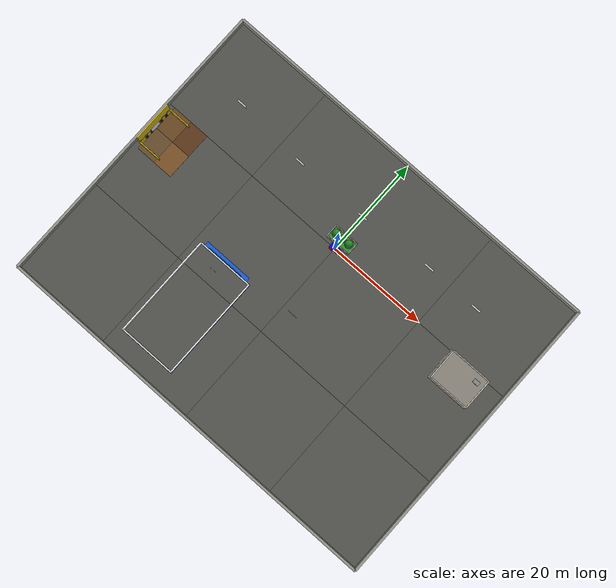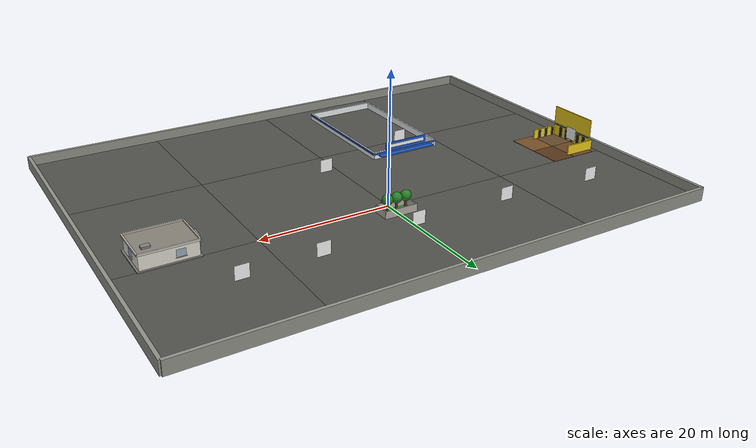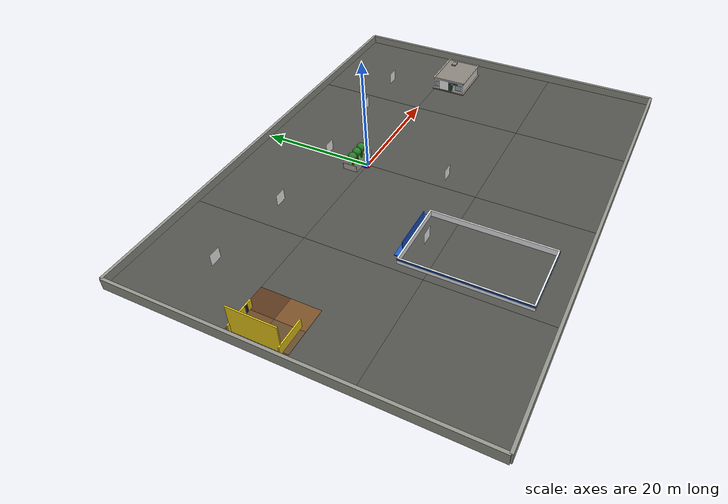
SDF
<sdf version="1.9">
 <world name="default">
  <light name="sun" type="directional">
   <pose>0 0 10 0 0 0</pose>
   <diffuse>0.8 0.8 0.8 1</diffuse>
   <specular>0.2 0.2 0.2 1</specular>
   <attenuation>
    <range>1000</range>
    <constant>0.9</constant>
    <linear>0.01</linear>
    <quadratic>0.001</quadratic>
   </attenuation>
   <direction>-0.5 0.1 -0.9</direction>
  </light>
  <physics type="ode">
   <ode>
    <solver><type>quick</type><iters>1000</iters><sor>1.3</sor></solver>
    <constraints>
     <cfm>0</cfm>
     <erp>0.2</erp>
     <contact_max_correcting_vel>100</contact_max_correcting_vel>
     <contact_surface_layer>0.001</contact_surface_layer>
    </constraints>
   </ode>
   <max_step_size>0.01</max_step_size>
   <real_time_factor>1</real_time_factor>
   <real_time_update_rate>100</real_time_update_rate>
   <gravity>0 0 -9.8</gravity>
  </physics>
  <scene><ambient>0.4 0.4 0.4 1</ambient><background>0.7 0.7 0.7 1</background><shadows>1</shadows></scene>
  <spherical_coordinates>
   <surface_model>EARTH_WGS84</surface_model>
   <latitude_deg>47.3667</latitude_deg>
   <longitude_deg>8.5500</longitude_deg>
   <elevation>500.0</elevation>
   <heading_deg>0</heading_deg>
  </spherical_coordinates>
  <model name="vehicle_blue" canonical_link="chassis">
   <pose relative_to="world">0.0 0.0 0 0 0 0</pose>
   <frame name="lidar_frame" attached_to="chassis"><pose>0.85 0 0.55 0 0 0</pose></frame>
   <link name="chassis">
    <pose relative_to="__model__">0.0 0.0 0.4 0 0 0</pose>
    <inertial>
     <mass>1.14395</mass>
     <inertia>
      <ixx>0.095329</ixx>
      <ixy>0</ixy>
      <ixz>0</ixz>
      <iyy>0.381317</iyy>
      <iyz>0</iyz>
      <izz>0.476646</izz>
     </inertia>
    </inertial>
    <visual name="visual">
     <geometry><box><size>2.0 1.0 0.5</size></box></geometry>
     <material>
      <ambient>0.0 0.0 1.0 1</ambient>
      <diffuse>0.0 0.0 1.0 1</diffuse>
      <specular>0.0 0.0 1.0 1</specular>
     </material>
    </visual>
    <collision name="collision"><geometry><box><size>2.0 1.0 0.5</size></box></geometry></collision>
    <sensor name="gpu_lidar" type="gpu_lidar">
     <pose relative_to="lidar_frame">0 0 0 0 0 0</pose>
     <topic>scan</topic>
     <update_rate>10</update_rate>
     <ray>
      <scan>
       <horizontal>
        <samples>360</samples>
        <resolution>1</resolution>
        <min_angle>-3.14159</min_angle>
        <max_angle>3.14159</max_angle>
       </horizontal>
       <vertical>
        <samples>1</samples>
        <resolution>0.01</resolution>
        <min_angle>0</min_angle>
        <max_angle>0</max_angle>
       </vertical>
      </scan>
      <range><min>0.08</min><max>30.0</max><resolution>0.01</resolution></range>
     </ray>
     <always_on>1</always_on>
     <visualize>true</visualize>
    </sensor>
    <sensor name="front_cam" type="camera">
     <pose>0.9  0  0.0  0  -0.10  0</pose>
     <update_rate>30</update_rate>
     <camera>
      <horizontal_fov>1.05</horizontal_fov>
      <image><width>1280</width><height>720</height><format>R8G8B8</format></image>
     </camera>
     <always_on>true</always_on>
    </sensor>
    <sensor name="imu_sensor" type="imu">
     <always_on>1</always_on>
     <update_rate>50</update_rate>
     <visualize>true</visualize>
     <topic>imu</topic>
    </sensor>
   </link>
   <link name="left_wheel">
    <pose relative_to="chassis">-0.5 0.6 0 -1.5707 0 0</pose>
    <inertial>
     <mass>1</mass>
     <inertia><ixx>0.043333</ixx><ixy>0</ixy><ixz>0</ixz><iyy>0.043333</iyy><iyz>0</iyz><izz>0.08</izz></inertia>
    </inertial>
    <visual name="visual">
     <geometry><cylinder><radius>0.4</radius><length>0.2</length></cylinder></geometry>
     <material>
      <ambient>1.0 0.0 0.0 1</ambient>
      <diffuse>1.0 0.0 0.0 1</diffuse>
      <specular>1.0 0.0 0.0 1</specular>
     </material>
    </visual>
    <collision name="collision">
     <geometry><cylinder><radius>0.4</radius><length>0.2</length></cylinder></geometry>
    </collision>
   </link>
   <link name="right_wheel">
    <pose relative_to="chassis">-0.5 -0.6 0 -1.5707 0 0</pose>
    <inertial>
     <mass>1</mass>
     <inertia><ixx>0.043333</ixx><ixy>0</ixy><ixz>0</ixz><iyy>0.043333</iyy><iyz>0</iyz><izz>0.08</izz></inertia>
    </inertial>
    <visual name="visual">
     <geometry><cylinder><radius>0.4</radius><length>0.2</length></cylinder></geometry>
     <material>
      <ambient>1.0 0.0 0.0 1</ambient>
      <diffuse>1.0 0.0 0.0 1</diffuse>
      <specular>1.0 0.0 0.0 1</specular>
     </material>
    </visual>
    <collision name="collision">
     <geometry><cylinder><radius>0.4</radius><length>0.2</length></cylinder></geometry>
    </collision>
   </link>
   <frame name="caster_frame" attached_to="chassis"><pose>0.8 0 -0.2 0 0 0</pose></frame>
   <link name="caster">
    <pose relative_to="caster_frame"/>
    <inertial>
     <mass>1</mass>
     <inertia><ixx>0.016</ixx><ixy>0</ixy><ixz>0</ixz><iyy>0.016</iyy><iyz>0</iyz><izz>0.016</izz></inertia>
    </inertial>
    <visual name="visual">
     <geometry><sphere><radius>0.2</radius></sphere></geometry>
     <material>
      <ambient>0.0 1 0.0 1</ambient>
      <diffuse>0.0 1 0.0 1</diffuse>
      <specular>0.0 1 0.0 1</specular>
     </material>
    </visual>
    <collision name="collision"><geometry><sphere><radius>0.2</radius></sphere></geometry></collision>
   </link>
   <joint name="left_wheel_joint" type="revolute">
    <pose relative_to="left_wheel"/>
    <parent>chassis</parent>
    <child>left_wheel</child>
    <axis>
     <xyz expressed_in="__model__">0 1 0</xyz>
     <limit><lower>-1.79769e+308</lower><upper>1.79769e+308</upper></limit>
    </axis>
   </joint>
   <joint name="right_wheel_joint" type="revolute">
    <pose relative_to="right_wheel"/>
    <parent>chassis</parent>
    <child>right_wheel</child>
    <axis>
     <xyz expressed_in="__model__">0 1 0</xyz>
     <limit><lower>-1.79769e+308</lower><upper>1.79769e+308</upper></limit>
    </axis>
   </joint>
   <joint name="caster_wheel" type="ball"><parent>chassis</parent><child>caster</child></joint>
   <plugin filename="gz-sim-diff-drive-system" name="gz::sim::systems::DiffDrive">
    <left_joint>left_wheel_joint</left_joint>
    <right_joint>right_wheel_joint</right_joint>
    <wheel_separation>1.2</wheel_separation>
    <wheel_radius>0.4</wheel_radius>
    <odom_publish_frequency>30.0</odom_publish_frequency>
    <topic>cmd_vel</topic>
    <max_linear_velocity>3.0</max_linear_velocity>
    <max_angular_velocity>3.0</max_angular_velocity>
    <max_linear_acceleration>5.0</max_linear_acceleration>
    <max_angular_acceleration>5.0</max_angular_acceleration>
   </plugin>
   <plugin name="gz::sim::systems::JointStatePublisher" filename="gz-sim-joint-state-publisher-system">
    <publish_rate>50</publish_rate>
   </plugin>
   <plugin filename="ignition-gazebo-sensors-system" name="ignition::gazebo::systems::Sensors">
    <render_engine>ogre2</render_engine>
   </plugin>
  </model>
  <include><name>qr1_docking_station</name><uri>model://qr1</uri><pose>-38.85 -5 1.5 0 1.5708 0</pose></include>
  <include><name>qr2_house_5</name><uri>model://qr2</uri><pose>-30 8.5 1.5 1.5708 0 0</pose></include>
  <include><name>qr3_house_4</name><uri>model://qr3</uri><pose>-15 7.5 1.5 1.5708 0 0</pose></include>
  <include><name>qr4_house_1</name><uri>model://qr4</uri><pose>0 7.5 1.5 1.5708 0 0</pose></include>
  <include><name>qr5_house_2</name><uri>model://qr5</uri><pose>15 8.5 1.5 1.5708 0 0</pose></include>
  <include><name>qr6_house_3</name><uri>model://qr6</uri><pose>26.0633 8.5 1.5 1.5708 0 0</pose></include>
  <include><name>qr7_fast_food</name><uri>model://qr7</uri><pose>2.2 -14 1.5 -1.5708 0 0</pose></include>
  <include><name>qr8_gas_station</name><uri>model://qr8</uri><pose>-13.3 -17.5 2.0 -1.5708 0 0</pose></include>
  <include>
   <name>qr10_community_clinic</name>
   <uri>model://qr10</uri>
   <pose>27.5 -2.2 1.5 0 -1.5708 0</pose>
  </include>
  <model name="asphalt_plane">
   <static>1</static>
   <link name="link">
    <collision name="collision"><geometry><box><size>20 20 0.1</size></box></geometry></collision>
    <visual name="visual">
     <cast_shadows>0</cast_shadows>
     <geometry><box><size>20 20 0.1</size></box></geometry>
     <material>
      <ambient>0.18 0.18 0.17 1</ambient>
      <diffuse>0.32 0.32 0.30 1</diffuse>
      <specular>0.05 0.05 0.05 1</specular>
      <emissive>0 0 0 1</emissive>
     </material>
    </visual>
    <velocity_decay><linear>0</linear><angular>0</angular></velocity_decay>
   </link>
   <pose>10 10 0 0 0 0</pose>
  </model>
  <model name="asphalt_plane_0">
   <static>1</static>
   <link name="link">
    <collision name="collision"><geometry><box><size>20 20 0.1</size></box></geometry></collision>
    <visual name="visual">
     <cast_shadows>0</cast_shadows>
     <geometry><box><size>20 20 0.1</size></box></geometry>
     <material>
      <ambient>0.18 0.18 0.17 1</ambient>
      <diffuse>0.32 0.32 0.30 1</diffuse>
      <specular>0.05 0.05 0.05 1</specular>
      <emissive>0 0 0 1</emissive>
     </material>
    </visual>
    <velocity_decay><linear>0</linear><angular>0</angular></velocity_decay>
   </link>
   <pose>10 -10 0 0 0 0</pose>
  </model>
  <model name="asphalt_plane_1">
   <static>1</static>
   <link name="link">
    <collision name="collision"><geometry><box><size>20 20 0.1</size></box></geometry></collision>
    <visual name="visual">
     <cast_shadows>0</cast_shadows>
     <geometry><box><size>20 20 0.1</size></box></geometry>
     <material>
      <ambient>0.18 0.18 0.17 1</ambient>
      <diffuse>0.32 0.32 0.30 1</diffuse>
      <specular>0.05 0.05 0.05 1</specular>
      <emissive>0 0 0 1</emissive>
     </material>
    </visual>
    <velocity_decay><linear>0</linear><angular>0</angular></velocity_decay>
   </link>
   <pose>-10 10 0 0 0 0</pose>
  </model>
  <model name="asphalt_plane_2">
   <static>1</static>
   <link name="link">
    <collision name="collision"><geometry><box><size>20 20 0.1</size></box></geometry></collision>
    <visual name="visual">
     <cast_shadows>0</cast_shadows>
     <geometry><box><size>20 20 0.1</size></box></geometry>
     <material>
      <ambient>0.18 0.18 0.17 1</ambient>
      <diffuse>0.32 0.32 0.30 1</diffuse>
      <specular>0.05 0.05 0.05 1</specular>
      <emissive>0 0 0 1</emissive>
     </material>
    </visual>
    <velocity_decay><linear>0</linear><angular>0</angular></velocity_decay>
   </link>
   <pose>-10 -10 0 0 0 0</pose>
  </model>
  <model name="asphalt_plane_3">
   <static>1</static>
   <link name="link">
    <collision name="collision"><geometry><box><size>20 20 0.1</size></box></geometry></collision>
    <visual name="visual">
     <cast_shadows>0</cast_shadows>
     <geometry><box><size>20 20 0.1</size></box></geometry>
     <material>
      <ambient>0.18 0.18 0.17 1</ambient>
      <diffuse>0.32 0.32 0.30 1</diffuse>
      <specular>0.05 0.05 0.05 1</specular>
      <emissive>0 0 0 1</emissive>
     </material>
    </visual>
    <velocity_decay><linear>0</linear><angular>0</angular></velocity_decay>
   </link>
   <pose>-10 -30 0 0 0 0</pose>
  </model>
  <model name="asphalt_plane_4">
   <static>1</static>
   <link name="link">
    <collision name="collision"><geometry><box><size>20 20 0.1</size></box></geometry></collision>
    <visual name="visual">
     <cast_shadows>0</cast_shadows>
     <geometry><box><size>20 20 0.1</size></box></geometry>
     <material>
      <ambient>0.18 0.18 0.17 1</ambient>
      <diffuse>0.32 0.32 0.30 1</diffuse>
      <specular>0.05 0.05 0.05 1</specular>
      <emissive>0 0 0 1</emissive>
     </material>
    </visual>
    <velocity_decay><linear>0</linear><angular>0</angular></velocity_decay>
   </link>
   <pose>10 -30 0 0 0 0</pose>
  </model>
  <model name="asphalt_plane_5">
   <static>1</static>
   <link name="link">
    <collision name="collision"><geometry><box><size>20 20 0.1</size></box></geometry></collision>
    <visual name="visual">
     <cast_shadows>0</cast_shadows>
     <geometry><box><size>20 20 0.1</size></box></geometry>
     <material>
      <ambient>0.18 0.18 0.17 1</ambient>
      <diffuse>0.32 0.32 0.30 1</diffuse>
      <specular>0.05 0.05 0.05 1</specular>
      <emissive>0 0 0 1</emissive>
     </material>
    </visual>
    <velocity_decay><linear>0</linear><angular>0</angular></velocity_decay>
   </link>
   <pose>30 -30 0 0 0 0</pose>
  </model>
  <model name="asphalt_plane_6">
   <static>1</static>
   <link name="link">
    <collision name="collision"><geometry><box><size>20 20 0.1</size></box></geometry></collision>
    <visual name="visual">
     <cast_shadows>0</cast_shadows>
     <geometry><box><size>20 20 0.1</size></box></geometry>
     <material>
      <ambient>0.18 0.18 0.17 1</ambient>
      <diffuse>0.32 0.32 0.30 1</diffuse>
      <specular>0.05 0.05 0.05 1</specular>
      <emissive>0 0 0 1</emissive>
     </material>
    </visual>
    <velocity_decay><linear>0</linear><angular>0</angular></velocity_decay>
   </link>
   <pose>30 10 0 0 0 0</pose>
  </model>
  <model name="asphalt_plane_7">
   <static>1</static>
   <link name="link">
    <collision name="collision"><geometry><box><size>20 20 0.1</size></box></geometry></collision>
    <visual name="visual">
     <cast_shadows>0</cast_shadows>
     <geometry><box><size>20 20 0.1</size></box></geometry>
     <material>
      <ambient>0.18 0.18 0.17 1</ambient>
      <diffuse>0.32 0.32 0.30 1</diffuse>
      <specular>0.05 0.05 0.05 1</specular>
      <emissive>0 0 0 1</emissive>
     </material>
    </visual>
    <velocity_decay><linear>0</linear><angular>0</angular></velocity_decay>
   </link>
   <pose>30 -10 0 0 0 0</pose>
  </model>
  <model name="asphalt_plane_8">
   <static>1</static>
   <link name="link">
    <collision name="collision"><geometry><box><size>20 20 0.1</size></box></geometry></collision>
    <visual name="visual">
     <cast_shadows>0</cast_shadows>
     <geometry><box><size>20 20 0.1</size></box></geometry>
     <material>
      <ambient>0.18 0.18 0.17 1</ambient>
      <diffuse>0.32 0.32 0.30 1</diffuse>
      <specular>0.05 0.05 0.05 1</specular>
      <emissive>0 0 0 1</emissive>
     </material>
    </visual>
    <velocity_decay><linear>0</linear><angular>0</angular></velocity_decay>
   </link>
   <pose>-30 10 0 0 0 0</pose>
  </model>
  <model name="asphalt_plane_9">
   <static>1</static>
   <link name="link">
    <collision name="collision"><geometry><box><size>20 20 0.1</size></box></geometry></collision>
    <visual name="visual">
     <cast_shadows>0</cast_shadows>
     <geometry><box><size>20 20 0.1</size></box></geometry>
     <material>
      <ambient>0.18 0.18 0.17 1</ambient>
      <diffuse>0.32 0.32 0.30 1</diffuse>
      <specular>0.05 0.05 0.05 1</specular>
      <emissive>0 0 0 1</emissive>
     </material>
    </visual>
    <velocity_decay><linear>0</linear><angular>0</angular></velocity_decay>
   </link>
   <pose>-30 -10 0 0 0 0</pose>
  </model>
  <model name="asphalt_plane_10">
   <static>1</static>
   <link name="link">
    <collision name="collision"><geometry><box><size>20 20 0.1</size></box></geometry></collision>
    <visual name="visual">
     <cast_shadows>0</cast_shadows>
     <geometry><box><size>20 20 0.1</size></box></geometry>
     <material>
      <ambient>0.18 0.18 0.17 1</ambient>
      <diffuse>0.32 0.32 0.30 1</diffuse>
      <specular>0.05 0.05 0.05 1</specular>
      <emissive>0 0 0 1</emissive>
     </material>
    </visual>
    <velocity_decay><linear>0</linear><angular>0</angular></velocity_decay>
   </link>
   <pose>-30 -30 0 0 0 0</pose>
  </model>
  <model name="Docking Station Wall">
   <static>1</static>
   <link name="link">
    <collision name="collision">
     <pose>-39 -5 2.55 0 0 0</pose>
     <geometry><box><size>0.2 8 5.0</size></box></geometry>
    </collision>
    <collision name="left_side_wall_collision">
     <pose>-37 -1 0.85 0 0 0</pose>
     <geometry><box><size>5.0 0.2 1.6</size></box></geometry>
    </collision>
    <collision name="right_side_wall_collision">
     <pose>-37 -9 0.85 0 0 0</pose>
     <geometry><box><size>5.0 0.2 1.6</size></box></geometry>
    </collision>
    <visual name="visual">
     <pose>-39 -5 2.55 0 0 0</pose>
     <geometry><box><size>0.2 8 5.0</size></box></geometry>
     <material>
      <ambient>0.55 0.48 0.05 1</ambient>
      <diffuse>0.95 0.82 0.10 1</diffuse>
      <specular>0.30 0.26 0.06 1</specular>
      <emissive>0.20 0.16 0.02 1</emissive>
     </material>
    </visual>
    <visual name="left_side_wall_visual">
     <pose>-37 -1 0.85 0 0 0</pose>
     <geometry><box><size>5.0 0.2 1.6</size></box></geometry>
     <material>
      <ambient>0.55 0.48 0.05 1</ambient>
      <diffuse>0.95 0.82 0.10 1</diffuse>
      <specular>0.30 0.26 0.06 1</specular>
      <emissive>0.20 0.16 0.02 1</emissive>
     </material>
    </visual>
    <visual name="right_side_wall_visual">
     <pose>-37 -9 0.85 0 0 0</pose>
     <geometry><box><size>5.0 0.2 1.6</size></box></geometry>
     <material>
      <ambient>0.55 0.48 0.05 1</ambient>
      <diffuse>0.95 0.82 0.10 1</diffuse>
      <specular>0.30 0.26 0.06 1</specular>
      <emissive>0.20 0.16 0.02 1</emissive>
     </material>
    </visual>
    <visual name="docking_stripe_inner_1">
     <pose>-38.89 -7.4 1.0 0 0 0</pose>
     <geometry><box><size>0.04 0.65 1.9</size></box></geometry>
     <material>
      <ambient>0.05 0.05 0.05 1</ambient>
      <diffuse>0.10 0.10 0.10 1</diffuse>
      <specular>0.05 0.05 0.05 1</specular>
     </material>
    </visual>
    <visual name="docking_stripe_inner_2">
     <pose>-38.89 -6.1 1.0 0 0 0</pose>
     <geometry><box><size>0.04 0.65 1.9</size></box></geometry>
     <material>
      <ambient>0.05 0.05 0.05 1</ambient>
      <diffuse>0.10 0.10 0.10 1</diffuse>
      <specular>0.05 0.05 0.05 1</specular>
     </material>
    </visual>
    <visual name="docking_stripe_inner_3">
     <pose>-38.89 -4.8 1.0 0 0 0</pose>
     <geometry><box><size>0.04 0.65 1.9</size></box></geometry>
     <material>
      <ambient>0.05 0.05 0.05 1</ambient>
      <diffuse>0.10 0.10 0.10 1</diffuse>
      <specular>0.05 0.05 0.05 1</specular>
     </material>
    </visual>
    <visual name="docking_stripe_inner_4">
     <pose>-38.89 -3.5 1.0 0 0 0</pose>
     <geometry><box><size>0.04 0.65 1.9</size></box></geometry>
     <material>
      <ambient>0.05 0.05 0.05 1</ambient>
      <diffuse>0.10 0.10 0.10 1</diffuse>
      <specular>0.05 0.05 0.05 1</specular>
     </material>
    </visual>
    <visual name="docking_stripe_inner_5">
     <pose>-38.89 -2.2 1.0 0 0 0</pose>
     <geometry><box><size>0.04 0.65 1.9</size></box></geometry>
     <material>
      <ambient>0.05 0.05 0.05 1</ambient>
      <diffuse>0.10 0.10 0.10 1</diffuse>
      <specular>0.05 0.05 0.05 1</specular>
     </material>
    </visual>
    <visual name="docking_kickplate_top">
     <pose>-38.89 -5 2.10 0 0 0</pose>
     <geometry><box><size>0.04 7.9 0.25</size></box></geometry>
     <material>
      <ambient>0.05 0.05 0.05 1</ambient>
      <diffuse>0.12 0.12 0.12 1</diffuse>
      <specular>0.05 0.05 0.05 1</specular>
     </material>
    </visual>
    <visual name="docking_stripe_left_1">
     <pose>-38.4 -1.11 0.85 0 0 0</pose>
     <geometry><box><size>0.55 0.04 1.4</size></box></geometry>
     <material><ambient>0.05 0.05 0.05 1</ambient><diffuse>0.10 0.10 0.10 1</diffuse></material>
    </visual>
    <visual name="docking_stripe_left_2">
     <pose>-37.0 -1.11 0.85 0 0 0</pose>
     <geometry><box><size>0.55 0.04 1.4</size></box></geometry>
     <material><ambient>0.05 0.05 0.05 1</ambient><diffuse>0.10 0.10 0.10 1</diffuse></material>
    </visual>
    <visual name="docking_stripe_left_3">
     <pose>-35.6 -1.11 0.85 0 0 0</pose>
     <geometry><box><size>0.55 0.04 1.4</size></box></geometry>
     <material><ambient>0.05 0.05 0.05 1</ambient><diffuse>0.10 0.10 0.10 1</diffuse></material>
    </visual>
    <visual name="docking_stripe_right_1">
     <pose>-38.4 -8.89 0.85 0 0 0</pose>
     <geometry><box><size>0.55 0.04 1.4</size></box></geometry>
     <material><ambient>0.05 0.05 0.05 1</ambient><diffuse>0.10 0.10 0.10 1</diffuse></material>
    </visual>
    <visual name="docking_stripe_right_2">
     <pose>-37.0 -8.89 0.85 0 0 0</pose>
     <geometry><box><size>0.55 0.04 1.4</size></box></geometry>
     <material><ambient>0.05 0.05 0.05 1</ambient><diffuse>0.10 0.10 0.10 1</diffuse></material>
    </visual>
    <visual name="docking_stripe_right_3">
     <pose>-35.6 -8.89 0.85 0 0 0</pose>
     <geometry><box><size>0.55 0.04 1.4</size></box></geometry>
     <material><ambient>0.05 0.05 0.05 1</ambient><diffuse>0.10 0.10 0.10 1</diffuse></material>
    </visual>
   </link>
  </model>
  <model name="boundary_walls">
   <static>1</static>
   <link name="link">
    <collision name="north_wall_collision">
     <pose>0 20.25 0.55 0 0 0</pose>
     <geometry><box><size>80.5 0.5 2.0</size></box></geometry>
    </collision>
    <collision name="south_wall_collision">
     <pose>0 -40.25 0.55 0 0 0</pose>
     <geometry><box><size>80.5 0.5 2.0</size></box></geometry>
    </collision>
    <collision name="east_wall_collision">
     <pose>40.25 -10 0.55 0 0 0</pose>
     <geometry><box><size>0.5 60.5 2.0</size></box></geometry>
    </collision>
    <collision name="west_wall_collision">
     <pose>-40.25 -10 0.55 0 0 0</pose>
     <geometry><box><size>0.5 60.5 2.0</size></box></geometry>
    </collision>
    <visual name="north_wall_visual">
     <pose>0 20.25 0.55 0 0 0</pose>
     <geometry><box><size>80.5 0.5 2.0</size></box></geometry>
     <material>
      <ambient>0.35 0.35 0.33 1</ambient>
      <diffuse>0.58 0.58 0.55 1</diffuse>
      <specular>0.08 0.08 0.08 1</specular>
      <emissive>0 0 0 1</emissive>
     </material>
    </visual>
    <visual name="south_wall_visual">
     <pose>0 -40.25 0.55 0 0 0</pose>
     <geometry><box><size>80.5 0.5 2.0</size></box></geometry>
     <material>
      <ambient>0.35 0.35 0.33 1</ambient>
      <diffuse>0.58 0.58 0.55 1</diffuse>
      <specular>0.08 0.08 0.08 1</specular>
      <emissive>0 0 0 1</emissive>
     </material>
    </visual>
    <visual name="east_wall_visual">
     <pose>40.25 -10 0.55 0 0 0</pose>
     <geometry><box><size>0.5 60.5 2.0</size></box></geometry>
     <material>
      <ambient>0.35 0.35 0.33 1</ambient>
      <diffuse>0.58 0.58 0.55 1</diffuse>
      <specular>0.08 0.08 0.08 1</specular>
      <emissive>0 0 0 1</emissive>
     </material>
    </visual>
    <visual name="west_wall_visual">
     <pose>-40.25 -10 0.55 0 0 0</pose>
     <geometry><box><size>0.5 60.5 2.0</size></box></geometry>
     <material>
      <ambient>0.35 0.35 0.33 1</ambient>
      <diffuse>0.58 0.58 0.55 1</diffuse>
      <specular>0.08 0.08 0.08 1</specular>
      <emissive>0 0 0 1</emissive>
     </material>
    </visual>
   </link>
  </model>
  <model name="gas_station_north_wall">
   <static>1</static>
   <pose>-12.8467 -15.2421 0.55 0 0 0</pose>
   <link name="link">
    <collision name="north_wall_collision"><geometry><box><size>11.5 0.25 1.1</size></box></geometry></collision>
    <visual name="north_wall_visual">
     <geometry><box><size>11.5 0.25 1.1</size></box></geometry>
     <material>
      <ambient>0.85 0.86 0.87 1</ambient>
      <diffuse>0.95 0.96 0.97 1</diffuse>
      <specular>0.10 0.10 0.12 1</specular>
      <emissive>0.04 0.04 0.04 1</emissive>
     </material>
    </visual>
    <visual name="supermarket_band">
     <pose>0 0.13 0.30 0 0 0</pose>
     <geometry><box><size>11.6 0.04 0.30</size></box></geometry>
     <material>
      <ambient>0.04 0.18 0.42 1</ambient>
      <diffuse>0.08 0.32 0.78 1</diffuse>
      <specular>0.10 0.18 0.28 1</specular>
      <emissive>0.04 0.10 0.22 1</emissive>
     </material>
    </visual>
    <visual name="supermarket_awning">
     <pose>0 0.55 0.05 0 0 0</pose>
     <geometry><box><size>10.0 0.85 0.12</size></box></geometry>
     <material>
      <ambient>0.04 0.20 0.45 1</ambient>
      <diffuse>0.10 0.36 0.82 1</diffuse>
      <specular>0.10 0.18 0.28 1</specular>
      <emissive>0 0 0 1</emissive>
     </material>
    </visual>
    <visual name="supermarket_sign_panel">
     <pose>0 0.22 1.25 0 0 0</pose>
     <geometry><box><size>7.5 0.10 1.3</size></box></geometry>
     <material>
      <ambient>0.04 0.18 0.42 1</ambient>
      <diffuse>0.10 0.34 0.82 1</diffuse>
      <specular>0.10 0.18 0.28 1</specular>
      <emissive>0.10 0.30 0.65 1</emissive>
     </material>
    </visual>
    <visual name="supermarket_sign_letters">
     <pose>0 0.28 1.25 0 0 0</pose>
     <geometry><box><size>6.8 0.04 0.55</size></box></geometry>
     <material>
      <ambient>0.98 0.98 0.94 1</ambient>
      <diffuse>1.0 1.0 0.97 1</diffuse>
      <specular>0.20 0.20 0.18 1</specular>
      <emissive>0.88 0.88 0.75 1</emissive>
     </material>
    </visual>
   </link>
  </model>
  <model name="gas_station_south_wall">
   <static>1</static>
   <pose>-12.8467 -36.0466 0.55 0 0 0</pose>
   <link name="link">
    <collision name="south_wall_collision"><geometry><box><size>11.5 0.25 1.1</size></box></geometry></collision>
    <visual name="south_wall_visual">
     <geometry><box><size>11.5 0.25 1.1</size></box></geometry>
     <material>
      <ambient>0.85 0.86 0.87 1</ambient>
      <diffuse>0.95 0.96 0.97 1</diffuse>
      <specular>0.10 0.10 0.12 1</specular>
      <emissive>0.04 0.04 0.04 1</emissive>
     </material>
    </visual>
    <visual name="supermarket_band_south">
     <pose>0 -0.13 0.30 0 0 0</pose>
     <geometry><box><size>11.6 0.04 0.30</size></box></geometry>
     <material>
      <ambient>0.04 0.18 0.42 1</ambient>
      <diffuse>0.08 0.32 0.78 1</diffuse>
      <specular>0.10 0.18 0.28 1</specular>
      <emissive>0.02 0.06 0.14 1</emissive>
     </material>
    </visual>
   </link>
  </model>
  <model name="gas_station_east_wall">
   <static>1</static>
   <pose>-7.0967 -25.64435 0.55 0 0 0</pose>
   <link name="link">
    <collision name="east_wall_collision">
     <geometry><box><size>0.25 21.0545 1.1</size></box></geometry>
    </collision>
    <visual name="east_wall_visual">
     <geometry><box><size>0.25 21.0545 1.1</size></box></geometry>
     <material>
      <ambient>0.85 0.86 0.87 1</ambient>
      <diffuse>0.95 0.96 0.97 1</diffuse>
      <specular>0.10 0.10 0.12 1</specular>
      <emissive>0.04 0.04 0.04 1</emissive>
     </material>
    </visual>
    <visual name="supermarket_band_east">
     <pose>0.13 0 0.30 0 0 0</pose>
     <geometry><box><size>0.04 21.1 0.30</size></box></geometry>
     <material>
      <ambient>0.04 0.18 0.42 1</ambient>
      <diffuse>0.08 0.32 0.78 1</diffuse>
      <specular>0.10 0.18 0.28 1</specular>
      <emissive>0.02 0.06 0.14 1</emissive>
     </material>
    </visual>
   </link>
  </model>
  <model name="gas_station_west_wall">
   <static>1</static>
   <pose>-18.5967 -25.64435 0.55 0 0 0</pose>
   <link name="link">
    <collision name="west_wall_collision">
     <geometry><box><size>0.25 21.0545 1.1</size></box></geometry>
    </collision>
    <visual name="west_wall_visual">
     <geometry><box><size>0.25 21.0545 1.1</size></box></geometry>
     <material>
      <ambient>0.85 0.86 0.87 1</ambient>
      <diffuse>0.95 0.96 0.97 1</diffuse>
      <specular>0.10 0.10 0.12 1</specular>
      <emissive>0.04 0.04 0.04 1</emissive>
     </material>
    </visual>
    <visual name="supermarket_band_west">
     <pose>-0.13 0 0.30 0 0 0</pose>
     <geometry><box><size>0.04 21.1 0.30</size></box></geometry>
     <material>
      <ambient>0.04 0.18 0.42 1</ambient>
      <diffuse>0.08 0.32 0.78 1</diffuse>
      <specular>0.10 0.18 0.28 1</specular>
      <emissive>0.02 0.06 0.14 1</emissive>
     </material>
    </visual>
   </link>
  </model>
  <model name="community_clinic">
   <static>true</static>
   <pose>32.0 -3.0 0 0 0 3.14159</pose>
   <link name="clinic_link">
    <visual name="foundation_visual">
     <pose>0 0 0.1 0 0 0</pose>
     <geometry><box><size>8.6 6.6 0.2</size></box></geometry>
     <material>
      <ambient>0.45 0.43 0.40 1</ambient>
      <diffuse>0.50 0.48 0.45 1</diffuse>
      <specular>0.05 0.05 0.05 1</specular>
     </material>
    </visual>
    <collision name="foundation_collision">
     <pose>0 0 0.1 0 0 0</pose>
     <geometry><box><size>8.6 6.6 0.2</size></box></geometry>
    </collision>
    <visual name="building_visual">
     <pose>0 0 1.2 0 0 0</pose>
     <geometry><box><size>8.0 6.0 2.2</size></box></geometry>
     <material>
      <ambient>0.88 0.86 0.82 1</ambient>
      <diffuse>0.90 0.88 0.84 1</diffuse>
      <specular>0.04 0.04 0.04 1</specular>
     </material>
    </visual>
    <collision name="building_collision">
     <pose>0 0 1.2 0 0 0</pose>
     <geometry><box><size>8.0 6.0 2.2</size></box></geometry>
    </collision>
    <visual name="parapet_front">
     <pose>0 3.1 2.45 0 0 0</pose>
     <geometry><box><size>8.2 0.2 0.3</size></box></geometry>
     <material><ambient>0.80 0.78 0.74 1</ambient><diffuse>0.82 0.80 0.76 1</diffuse></material>
    </visual>
    <visual name="parapet_back">
     <pose>0 -3.1 2.45 0 0 0</pose>
     <geometry><box><size>8.2 0.2 0.3</size></box></geometry>
     <material><ambient>0.80 0.78 0.74 1</ambient><diffuse>0.82 0.80 0.76 1</diffuse></material>
    </visual>
    <visual name="parapet_left">
     <pose>-4.1 0 2.45 0 0 0</pose>
     <geometry><box><size>0.2 6.2 0.3</size></box></geometry>
     <material><ambient>0.80 0.78 0.74 1</ambient><diffuse>0.82 0.80 0.76 1</diffuse></material>
    </visual>
    <visual name="parapet_right">
     <pose>4.1 0 2.45 0 0 0</pose>
     <geometry><box><size>0.2 6.2 0.3</size></box></geometry>
     <material><ambient>0.80 0.78 0.74 1</ambient><diffuse>0.82 0.80 0.76 1</diffuse></material>
    </visual>
    <visual name="roof_slab">
     <pose>0 0 2.32 0 0 0</pose>
     <geometry><box><size>8.2 6.2 0.14</size></box></geometry>
     <material><ambient>0.52 0.50 0.46 1</ambient><diffuse>0.54 0.52 0.48 1</diffuse></material>
    </visual>
    <visual name="canopy_slab">
     <pose>3.6 0 2.05 0 0 0</pose>
     <geometry><box><size>1.2 2.4 0.12</size></box></geometry>
     <material><ambient>0.75 0.73 0.70 1</ambient><diffuse>0.77 0.75 0.72 1</diffuse></material>
    </visual>
    <visual name="canopy_pillar_left">
     <pose>4.05 0.85 1.05 0 0 0</pose>
     <geometry><box><size>0.15 0.15 2.1</size></box></geometry>
     <material><ambient>0.82 0.80 0.77 1</ambient><diffuse>0.84 0.82 0.79 1</diffuse></material>
    </visual>
    <visual name="canopy_pillar_right">
     <pose>4.05 -0.85 1.05 0 0 0</pose>
     <geometry><box><size>0.15 0.15 2.1</size></box></geometry>
     <material><ambient>0.82 0.80 0.77 1</ambient><diffuse>0.84 0.82 0.79 1</diffuse></material>
    </visual>
    <visual name="door_frame">
     <pose>4.02 0 1.0 0 0 0</pose>
     <geometry><box><size>0.06 1.5 2.05</size></box></geometry>
     <material><ambient>0.20 0.18 0.16 1</ambient><diffuse>0.22 0.20 0.18 1</diffuse></material>
    </visual>
    <visual name="door_left">
     <pose>4.04 0.30 0.95 0 0 0</pose>
     <geometry><box><size>0.05 0.62 1.90</size></box></geometry>
     <material><ambient>0.14 0.26 0.20 1</ambient><diffuse>0.16 0.28 0.22 1</diffuse></material>
    </visual>
    <visual name="door_right">
     <pose>4.04 -0.30 0.95 0 0 0</pose>
     <geometry><box><size>0.05 0.62 1.90</size></box></geometry>
     <material><ambient>0.14 0.26 0.20 1</ambient><diffuse>0.16 0.28 0.22 1</diffuse></material>
    </visual>
    <visual name="door_transom">
     <pose>4.04 0 1.97 0 0 0</pose>
     <geometry><box><size>0.04 1.30 0.20</size></box></geometry>
     <material><ambient>0.55 0.70 0.75 0.65</ambient><diffuse>0.55 0.70 0.75 0.65</diffuse></material>
    </visual>
    <visual name="fw1_glass">
     <pose>4.02 2.10 1.30 0 0 0</pose>
     <geometry><box><size>0.04 1.30 1.00</size></box></geometry>
     <material><ambient>0.42 0.60 0.72 0.55</ambient><diffuse>0.42 0.60 0.72 0.55</diffuse></material>
    </visual>
    <visual name="fw1_frame_top">
     <pose>4.04 2.10 1.86 0 0 0</pose>
     <geometry><box><size>0.05 1.36 0.06</size></box></geometry>
     <material><ambient>0.92 0.92 0.90 1</ambient><diffuse>0.94 0.94 0.92 1</diffuse></material>
    </visual>
    <visual name="fw1_frame_bot">
     <pose>4.04 2.10 0.76 0 0 0</pose>
     <geometry><box><size>0.05 1.36 0.06</size></box></geometry>
     <material><ambient>0.92 0.92 0.90 1</ambient><diffuse>0.94 0.94 0.92 1</diffuse></material>
    </visual>
    <visual name="fw1_sill">
     <pose>4.06 2.10 0.71 0 0 0</pose>
     <geometry><box><size>0.12 1.50 0.05</size></box></geometry>
     <material><ambient>0.80 0.78 0.75 1</ambient><diffuse>0.82 0.80 0.77 1</diffuse></material>
    </visual>
    <visual name="fw2_glass">
     <pose>4.02 -2.10 1.30 0 0 0</pose>
     <geometry><box><size>0.04 1.30 1.00</size></box></geometry>
     <material><ambient>0.42 0.60 0.72 0.55</ambient><diffuse>0.42 0.60 0.72 0.55</diffuse></material>
    </visual>
    <visual name="fw2_frame_top">
     <pose>4.04 -2.10 1.86 0 0 0</pose>
     <geometry><box><size>0.05 1.36 0.06</size></box></geometry>
     <material><ambient>0.92 0.92 0.90 1</ambient><diffuse>0.94 0.94 0.92 1</diffuse></material>
    </visual>
    <visual name="fw2_frame_bot">
     <pose>4.04 -2.10 0.76 0 0 0</pose>
     <geometry><box><size>0.05 1.36 0.06</size></box></geometry>
     <material><ambient>0.92 0.92 0.90 1</ambient><diffuse>0.94 0.94 0.92 1</diffuse></material>
    </visual>
    <visual name="fw2_sill">
     <pose>4.06 -2.10 0.71 0 0 0</pose>
     <geometry><box><size>0.12 1.50 0.05</size></box></geometry>
     <material><ambient>0.80 0.78 0.75 1</ambient><diffuse>0.82 0.80 0.77 1</diffuse></material>
    </visual>
    <visual name="bw1_glass">
     <pose>1.5 -3.03 1.30 0 0 0</pose>
     <geometry><box><size>1.30 0.04 1.00</size></box></geometry>
     <material><ambient>0.42 0.60 0.72 0.55</ambient><diffuse>0.42 0.60 0.72 0.55</diffuse></material>
    </visual>
    <visual name="bw1_sill">
     <pose>1.5 -3.06 0.71 0 0 0</pose>
     <geometry><box><size>1.50 0.12 0.05</size></box></geometry>
     <material><ambient>0.80 0.78 0.75 1</ambient><diffuse>0.82 0.80 0.77 1</diffuse></material>
    </visual>
    <visual name="lw1_glass">
     <pose>-4.03 0 1.30 0 0 0</pose>
     <geometry><box><size>0.04 1.30 1.00</size></box></geometry>
     <material><ambient>0.42 0.60 0.72 0.55</ambient><diffuse>0.42 0.60 0.72 0.55</diffuse></material>
    </visual>
    <visual name="lw1_sill">
     <pose>-4.06 0 0.71 0 0 0</pose>
     <geometry><box><size>0.12 1.50 0.05</size></box></geometry>
     <material><ambient>0.80 0.78 0.75 1</ambient><diffuse>0.82 0.80 0.77 1</diffuse></material>
    </visual>
    <visual name="sign_bracket">
     <pose>4.05 0 2.10 0 0 0</pose>
     <geometry><box><size>0.06 3.8 0.55</size></box></geometry>
     <material><ambient>0.30 0.32 0.34 1</ambient><diffuse>0.32 0.34 0.36 1</diffuse></material>
    </visual>
    <visual name="sign_face">
     <pose>4.08 0 2.10 0 0 0</pose>
     <geometry><box><size>0.04 3.6 0.45</size></box></geometry>
     <material><ambient>0.18 0.45 0.65 1</ambient><diffuse>0.20 0.48 0.68 1</diffuse></material>
    </visual>
    <visual name="cross_h">
     <pose>4.10 1.40 2.10 0 0 0</pose>
     <geometry><box><size>0.02 0.36 0.12</size></box></geometry>
     <material>
      <ambient>0.06 0.32 0.10 1</ambient>
      <diffuse>0.10 0.60 0.20 1</diffuse>
      <emissive>0.04 0.18 0.06 1</emissive>
     </material>
    </visual>
    <visual name="cross_v">
     <pose>4.10 1.40 2.10 0 0 0</pose>
     <geometry><box><size>0.02 0.12 0.36</size></box></geometry>
     <material>
      <ambient>0.06 0.32 0.10 1</ambient>
      <diffuse>0.10 0.60 0.20 1</diffuse>
      <emissive>0.04 0.18 0.06 1</emissive>
     </material>
    </visual>
    <visual name="pharmacy_cross_door_h">
     <pose>4.10 -1.40 2.10 0 0 0</pose>
     <geometry><box><size>0.02 0.36 0.12</size></box></geometry>
     <material>
      <ambient>0.06 0.32 0.10 1</ambient>
      <diffuse>0.10 0.60 0.20 1</diffuse>
      <emissive>0.04 0.18 0.06 1</emissive>
     </material>
    </visual>
    <visual name="pharmacy_cross_door_v">
     <pose>4.10 -1.40 2.10 0 0 0</pose>
     <geometry><box><size>0.02 0.12 0.36</size></box></geometry>
     <material>
      <ambient>0.06 0.32 0.10 1</ambient>
      <diffuse>0.10 0.60 0.20 1</diffuse>
      <emissive>0.04 0.18 0.06 1</emissive>
     </material>
    </visual>
    <visual name="pharmacy_rx_plaque">
     <pose>4.08 0.80 1.85 0 0 0</pose>
     <geometry><box><size>0.04 0.42 0.42</size></box></geometry>
     <material>
      <ambient>0.95 0.95 0.92 1</ambient>
      <diffuse>0.98 0.98 0.96 1</diffuse>
      <emissive>0.20 0.55 0.25 1</emissive>
     </material>
    </visual>
    <visual name="hvac_body">
     <pose>-2.5 -1.5 2.55 0 0 0</pose>
     <geometry><box><size>1.2 0.8 0.30</size></box></geometry>
     <material><ambient>0.48 0.48 0.48 1</ambient><diffuse>0.52 0.52 0.52 1</diffuse></material>
    </visual>
    <inertial>
     <mass>5000</mass>
     <inertia><ixx>1000</ixx><ixy>0</ixy><ixz>0</ixz><iyy>1000</iyy><iyz>0</iyz><izz>1000</izz></inertia>
    </inertial>
   </link>
  </model>
  <model name="mud_box">
   <static>1</static>
   <link name="link">
    <collision name="collision"><geometry><box><size>8 10 0.2</size></box></geometry></collision>
    <visual name="visual_1">
     <pose>-2 2.5 0 0 0 0</pose>
     <cast_shadows>0</cast_shadows>
     <geometry><box><size>4 5 0.2</size></box></geometry>
     <material>
      <ambient>0.22 0.14 0.07 1</ambient>
      <diffuse>0.42 0.28 0.14 1</diffuse>
      <specular>0.04 0.03 0.02 1</specular>
      <emissive>0 0 0 1</emissive>
     </material>
    </visual>
    <visual name="visual_2">
     <pose>2 2.5 0 0 0 0</pose>
     <cast_shadows>0</cast_shadows>
     <geometry><box><size>4 5 0.2</size></box></geometry>
     <material>
      <ambient>0.18 0.11 0.06 1</ambient>
      <diffuse>0.36 0.22 0.11 1</diffuse>
      <specular>0.04 0.03 0.02 1</specular>
      <emissive>0 0 0 1</emissive>
     </material>
    </visual>
    <visual name="visual_3">
     <pose>2 -2.5 0 0 0 0</pose>
     <cast_shadows>0</cast_shadows>
     <geometry><box><size>4 5 0.2</size></box></geometry>
     <material>
      <ambient>0.24 0.16 0.08 1</ambient>
      <diffuse>0.48 0.32 0.16 1</diffuse>
      <specular>0.04 0.03 0.02 1</specular>
      <emissive>0 0 0 1</emissive>
     </material>
    </visual>
    <visual name="visual_4">
     <pose>-2 -2.5 0 0 0 0</pose>
     <cast_shadows>0</cast_shadows>
     <geometry><box><size>4 5 0.2</size></box></geometry>
     <material>
      <ambient>0.20 0.15 0.09 1</ambient>
      <diffuse>0.40 0.30 0.18 1</diffuse>
      <specular>0.04 0.03 0.02 1</specular>
      <emissive>0 0 0 1</emissive>
     </material>
    </visual>
    <velocity_decay><linear>0</linear><angular>0</angular></velocity_decay>
   </link>
   <pose>-35 -5 0 0 0 0</pose>
  </model>
  <model name="street_island">
   <static>true</static>
   <link name="link">
    <collision name="wall_north_collision">
     <pose>0 3.25 0.6 0 0 0</pose>
     <geometry><box><size>5.15 0.15 1.2</size></box></geometry>
    </collision>
    <visual name="wall_north_visual">
     <pose>0 3.25 0.6 0 0 0</pose>
     <geometry><box><size>5.15 0.15 1.2</size></box></geometry>
     <material>
      <ambient>0.42 0.40 0.38 1</ambient>
      <diffuse>0.72 0.70 0.66 1</diffuse>
      <specular>0.10 0.10 0.10 1</specular>
      <emissive>0.02 0.02 0.02 1</emissive>
     </material>
    </visual>
    <collision name="wall_south_collision">
     <pose>0 0.75 0.6 0 0 0</pose>
     <geometry><box><size>5.15 0.15 1.2</size></box></geometry>
    </collision>
    <visual name="wall_south_visual">
     <pose>0 0.75 0.6 0 0 0</pose>
     <geometry><box><size>5.15 0.15 1.2</size></box></geometry>
     <material>
      <ambient>0.42 0.40 0.38 1</ambient>
      <diffuse>0.72 0.70 0.66 1</diffuse>
      <specular>0.10 0.10 0.10 1</specular>
      <emissive>0.02 0.02 0.02 1</emissive>
     </material>
    </visual>
    <collision name="wall_east_collision">
     <pose>2.5 2.0 0.6 0 0 0</pose>
     <geometry><box><size>0.15 2.5 1.2</size></box></geometry>
    </collision>
    <visual name="wall_east_visual">
     <pose>2.5 2.0 0.6 0 0 0</pose>
     <geometry><box><size>0.15 2.5 1.2</size></box></geometry>
     <material>
      <ambient>0.42 0.40 0.38 1</ambient>
      <diffuse>0.72 0.70 0.66 1</diffuse>
      <specular>0.10 0.10 0.10 1</specular>
      <emissive>0.02 0.02 0.02 1</emissive>
     </material>
    </visual>
    <collision name="wall_west_collision">
     <pose>-2.5 2.0 0.6 0 0 0</pose>
     <geometry><box><size>0.15 2.5 1.2</size></box></geometry>
    </collision>
    <visual name="wall_west_visual">
     <pose>-2.5 2.0 0.6 0 0 0</pose>
     <geometry><box><size>0.15 2.5 1.2</size></box></geometry>
     <material>
      <ambient>0.42 0.40 0.38 1</ambient>
      <diffuse>0.72 0.70 0.66 1</diffuse>
      <specular>0.10 0.10 0.10 1</specular>
      <emissive>0.02 0.02 0.02 1</emissive>
     </material>
    </visual>
    <visual name="grass_patch_visual">
     <pose>0 2.0 0.05 0 0 0</pose>
     <geometry><box><size>4.85 2.35 0.08</size></box></geometry>
     <material>
      <ambient>0.10 0.30 0.10 1</ambient>
      <diffuse>0.20 0.55 0.20 1</diffuse>
      <specular>0.04 0.08 0.04 1</specular>
      <emissive>0 0 0 1</emissive>
     </material>
    </visual>
    <collision name="tree_a_trunk_collision">
     <pose>-1.5 2.0 0.9 0 0 0</pose>
     <geometry><cylinder><radius>0.18</radius><length>1.8</length></cylinder></geometry>
    </collision>
    <visual name="tree_a_trunk_visual">
     <pose>-1.5 2.0 0.9 0 0 0</pose>
     <geometry><cylinder><radius>0.18</radius><length>1.8</length></cylinder></geometry>
     <material>
      <ambient>0.18 0.10 0.05 1</ambient>
      <diffuse>0.35 0.20 0.10 1</diffuse>
      <specular>0.08 0.05 0.03 1</specular>
      <emissive>0 0 0 1</emissive>
     </material>
    </visual>
    <collision name="tree_a_canopy_collision">
     <pose>-1.5 2.0 2.2 0 0 0</pose>
     <geometry><sphere><radius>0.8</radius></sphere></geometry>
    </collision>
    <visual name="tree_a_canopy_visual">
     <pose>-1.5 2.0 2.2 0 0 0</pose>
     <geometry><sphere><radius>0.8</radius></sphere></geometry>
     <material>
      <ambient>0.07 0.25 0.07 1</ambient>
      <diffuse>0.15 0.50 0.15 1</diffuse>
      <specular>0.05 0.10 0.05 1</specular>
      <emissive>0 0 0 1</emissive>
     </material>
    </visual>
    <collision name="tree_b_trunk_collision">
     <pose>0 2.0 0.9 0 0 0</pose>
     <geometry><cylinder><radius>0.18</radius><length>1.8</length></cylinder></geometry>
    </collision>
    <visual name="tree_b_trunk_visual">
     <pose>0 2.0 0.9 0 0 0</pose>
     <geometry><cylinder><radius>0.18</radius><length>1.8</length></cylinder></geometry>
     <material>
      <ambient>0.18 0.10 0.05 1</ambient>
      <diffuse>0.35 0.20 0.10 1</diffuse>
      <specular>0.08 0.05 0.03 1</specular>
      <emissive>0 0 0 1</emissive>
     </material>
    </visual>
    <collision name="tree_b_canopy_collision">
     <pose>0 2.0 2.2 0 0 0</pose>
     <geometry><sphere><radius>0.8</radius></sphere></geometry>
    </collision>
    <visual name="tree_b_canopy_visual">
     <pose>0 2.0 2.2 0 0 0</pose>
     <geometry><sphere><radius>0.8</radius></sphere></geometry>
     <material>
      <ambient>0.07 0.25 0.07 1</ambient>
      <diffuse>0.15 0.50 0.15 1</diffuse>
      <specular>0.05 0.10 0.05 1</specular>
      <emissive>0 0 0 1</emissive>
     </material>
    </visual>
    <collision name="tree_c_trunk_collision">
     <pose>1.5 2.0 0.9 0 0 0</pose>
     <geometry><cylinder><radius>0.18</radius><length>1.8</length></cylinder></geometry>
    </collision>
    <visual name="tree_c_trunk_visual">
     <pose>1.5 2.0 0.9 0 0 0</pose>
     <geometry><cylinder><radius>0.18</radius><length>1.8</length></cylinder></geometry>
     <material>
      <ambient>0.18 0.10 0.05 1</ambient>
      <diffuse>0.35 0.20 0.10 1</diffuse>
      <specular>0.08 0.05 0.03 1</specular>
      <emissive>0 0 0 1</emissive>
     </material>
    </visual>
    <collision name="tree_c_canopy_collision">
     <pose>1.5 2.0 2.2 0 0 0</pose>
     <geometry><sphere><radius>0.8</radius></sphere></geometry>
    </collision>
    <visual name="tree_c_canopy_visual">
     <pose>1.5 2.0 2.2 0 0 0</pose>
     <geometry><sphere><radius>0.8</radius></sphere></geometry>
     <material>
      <ambient>0.07 0.25 0.07 1</ambient>
      <diffuse>0.15 0.50 0.15 1</diffuse>
      <specular>0.05 0.10 0.05 1</specular>
      <emissive>0 0 0 1</emissive>
     </material>
    </visual>
   </link>
  </model>
 </world>
</sdf>

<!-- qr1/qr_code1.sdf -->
<sdf version="1.7">
  <model name="qr_1">
    <static>true</static>

    <link name="link">
      <visual name="qr_visual">
        <geometry>
          <plane>
            <normal>0 0 1</normal>
            <size>2 2</size>
          </plane>
        </geometry>

        <material>
          <diffuse>1 1 1 1</diffuse>
          <pbr>
            <metal>
              <albedo_map>model://qr1/materials/textures/qr_1.png</albedo_map>
              <roughness>1.0</roughness>
              <metalness>0.0</metalness>
            </metal>
          </pbr>
        </material>
      </visual>
    </link>
  </model>
</sdf>

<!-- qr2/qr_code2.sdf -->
<sdf version="1.7">
  <model name="qr_2">
    <static>true</static>

    <link name="link">
      <visual name="qr_visual">
        <geometry>
          <plane>
            <normal>0 0 1</normal>
            <size>2 2</size>
          </plane>
        </geometry>

        <material>
          <diffuse>1 1 1 1</diffuse>
          <pbr>
            <metal>
              <albedo_map>model://qr2/materials/textures/qr_2.png</albedo_map>
              <roughness>1.0</roughness>
              <metalness>0.0</metalness>
            </metal>
          </pbr>
        </material>
      </visual>
    </link>
  </model>
</sdf>

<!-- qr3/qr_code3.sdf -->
<sdf version="1.7">
  <model name="qr_3">
    <static>true</static>

    <link name="link">
      <visual name="qr_visual">
        <geometry>
          <plane>
            <normal>0 0 1</normal>
            <size>2 2</size>
          </plane>
        </geometry>

        <material>
          <diffuse>1 1 1 1</diffuse>
          <pbr>
            <metal>
              <albedo_map>model://qr3/materials/textures/qr_3.png</albedo_map>
              <roughness>1.0</roughness>
              <metalness>0.0</metalness>
            </metal>
          </pbr>
        </material>
      </visual>
    </link>
  </model>
</sdf>

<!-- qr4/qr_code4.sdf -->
<sdf version="1.7">
  <model name="qr_4">
    <static>true</static>

    <link name="link">
      <visual name="qr_visual">
        <geometry>
          <plane>
            <normal>0 0 1</normal>
            <size>2 2</size>
          </plane>
        </geometry>

        <material>
          <diffuse>1 1 1 1</diffuse>
          <pbr>
            <metal>
              <albedo_map>model://qr4/materials/textures/qr_4.png</albedo_map>
              <roughness>1.0</roughness>
              <metalness>0.0</metalness>
            </metal>
          </pbr>
        </material>
      </visual>
    </link>
  </model>
</sdf>

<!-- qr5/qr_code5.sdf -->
<sdf version="1.7">
  <model name="qr_5">
    <static>true</static>

    <link name="link">
      <visual name="qr_visual">
        <geometry>
          <plane>
            <normal>0 0 1</normal>
            <size>2 2</size>
          </plane>
        </geometry>

        <material>
          <diffuse>1 1 1 1</diffuse>
          <pbr>
            <metal>
              <albedo_map>model://qr5/materials/textures/qr_5.png</albedo_map>
              <roughness>1.0</roughness>
              <metalness>0.0</metalness>
            </metal>
          </pbr>
        </material>
      </visual>
    </link>
  </model>
</sdf>

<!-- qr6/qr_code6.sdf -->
<sdf version="1.7">
  <model name="qr_6">
    <static>true</static>

    <link name="link">
      <visual name="qr_visual">
        <geometry>
          <plane>
            <normal>0 0 1</normal>
            <size>2 2</size>
          </plane>
        </geometry>

        <material>
          <diffuse>1 1 1 1</diffuse>
          <pbr>
            <metal>
              <albedo_map>model://qr6/materials/textures/qr_6.png</albedo_map>
              <roughness>1.0</roughness>
              <metalness>0.0</metalness>
            </metal>
          </pbr>
        </material>
      </visual>
    </link>
  </model>
</sdf>

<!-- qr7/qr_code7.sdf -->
<sdf version="1.7">
  <model name="qr_7">
    <static>true</static>

    <link name="link">
      <visual name="qr_visual">
        <geometry>
          <plane>
            <normal>0 0 1</normal>
            <size>2 2</size>
          </plane>
        </geometry>

        <material>
          <diffuse>1 1 1 1</diffuse>
          <pbr>
            <metal>
              <albedo_map>model://qr7/materials/textures/qr_7.png</albedo_map>
              <roughness>1.0</roughness>
              <metalness>0.0</metalness>
            </metal>
          </pbr>
        </material>
      </visual>
    </link>
  </model>
</sdf>

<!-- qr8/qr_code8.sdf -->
<sdf version="1.7">
  <model name="qr_8">
    <static>true</static>

    <link name="link">
      <visual name="qr_visual">
        <geometry>
          <plane>
            <normal>0 0 1</normal>
            <size>2 2</size>
          </plane>
        </geometry>

        <material>
          <diffuse>1 1 1 1</diffuse>
          <pbr>
            <metal>
              <albedo_map>model://qr8/materials/textures/qr_8.png</albedo_map>
              <roughness>1.0</roughness>
              <metalness>0.0</metalness>
            </metal>
          </pbr>
        </material>
      </visual>
    </link>
  </model>
</sdf>

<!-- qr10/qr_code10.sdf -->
<sdf version="1.7">
  <model name="qr_10">
    <static>true</static>

    <link name="link">
      <visual name="qr_visual">
        <geometry>
          <plane>
            <normal>0 0 1</normal>
            <size>2 2</size>
          </plane>
        </geometry>

        <material>
          <diffuse>1 1 1 1</diffuse>
          <pbr>
            <metal>
              <albedo_map>model://qr10/materials/textures/qr_10.png</albedo_map>
              <roughness>1.0</roughness>
              <metalness>0.0</metalness>
            </metal>
          </pbr>
        </material>
      </visual>
    </link>
  </model>
</sdf>
